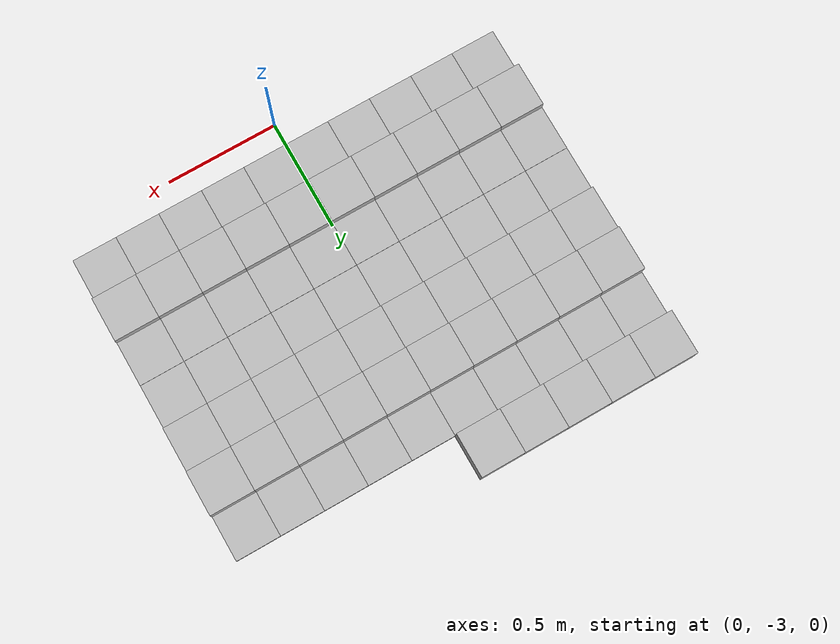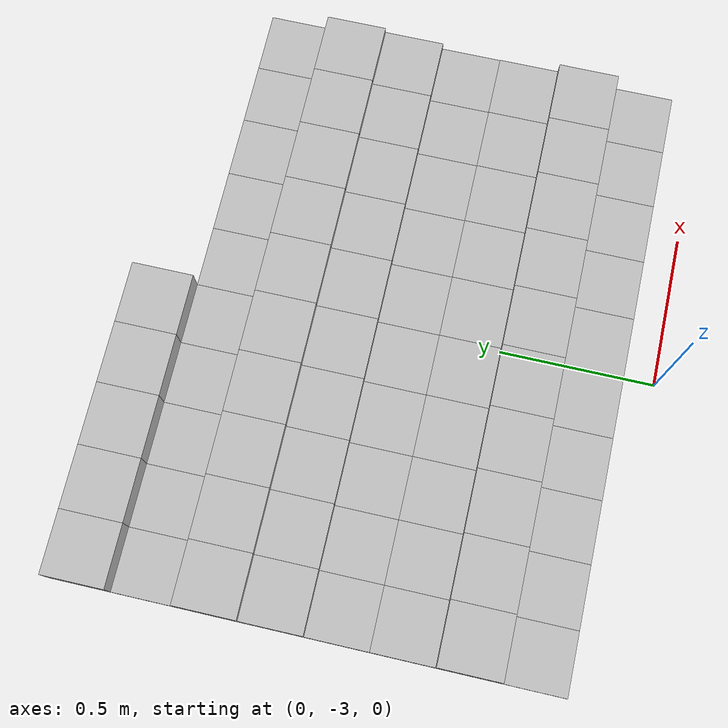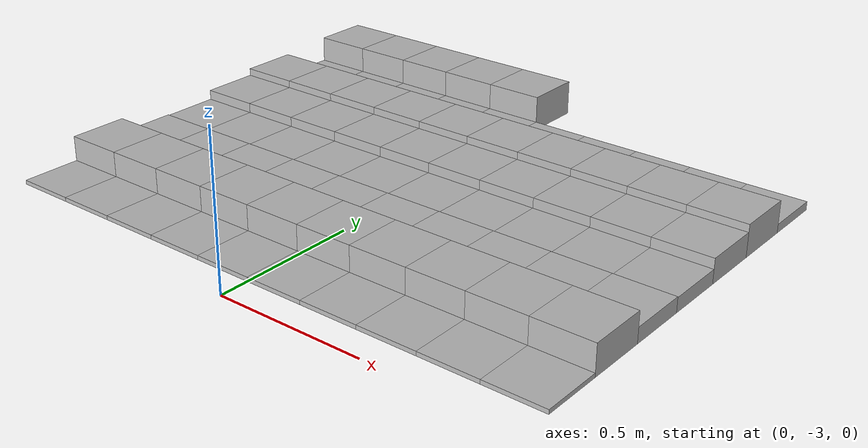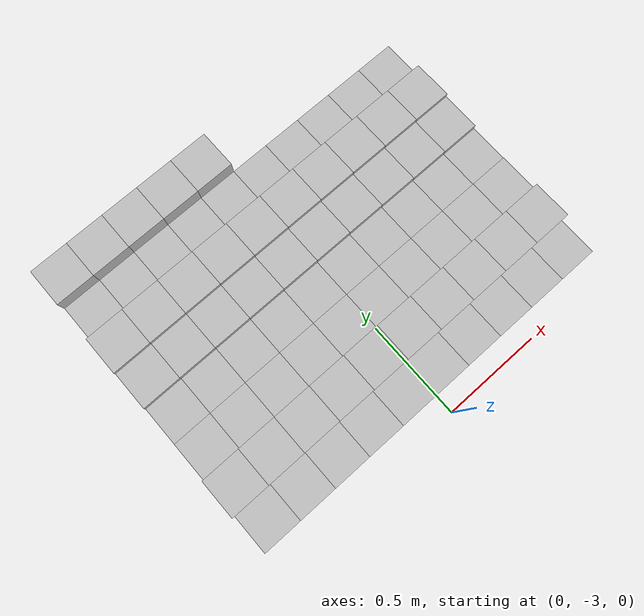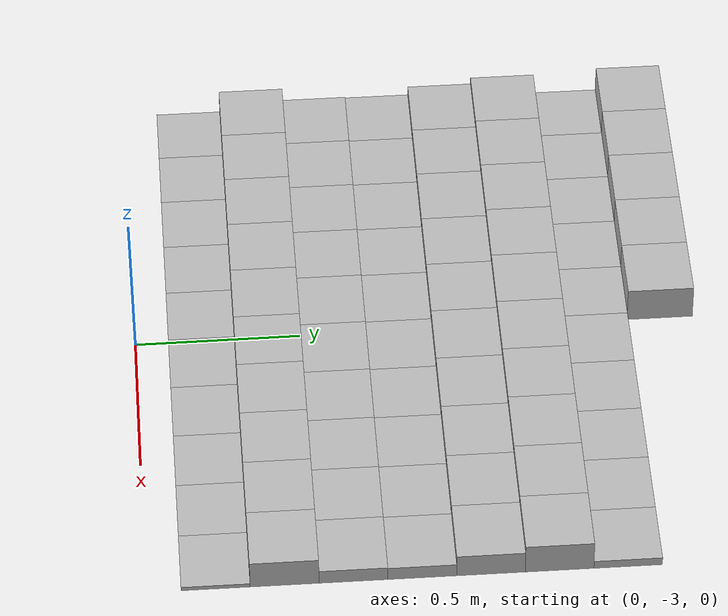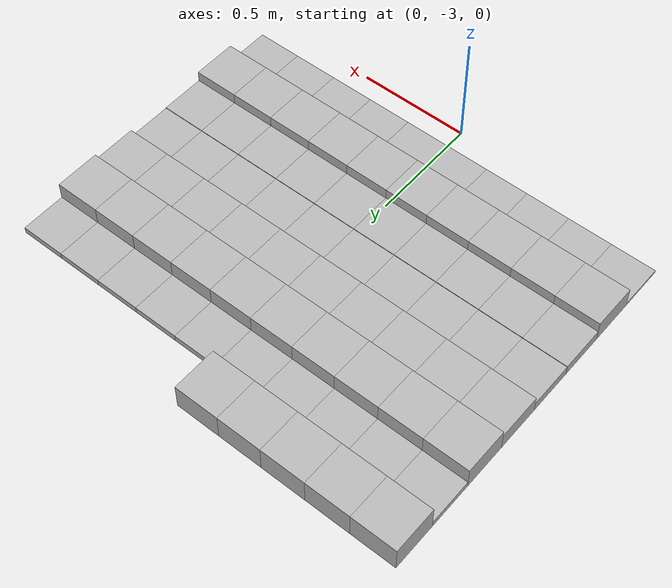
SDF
<sdf version="1.6">
 <model name="Terrain">
  <static>true</static>
  <link name="box_7_0">
   <pose>-0.9 -1.4 0.0604212234558 0 0 0</pose>
   <inertial>
    <mass>1.0</mass>
    <inertia><ixx>0.0</ixx><ixy>0.0</ixy><ixz>0.0</ixz><iyy>0.0</iyy><iyz>0.0</iyz><izz>0.0</izz></inertia>
   </inertial>
   <collision name="collision"><geometry><box><size>0.2 0.2 0.120842446912</size></box></geometry></collision>
   <visual name="visual"><geometry><box><size>0.2 0.2 0.120842446912</size></box></geometry></visual>
  </link>
  <link name="box_7_1">
   <pose>-0.7 -1.4 0.0604212234558 0 0 0</pose>
   <inertial>
    <mass>1.0</mass>
    <inertia><ixx>0.0</ixx><ixy>0.0</ixy><ixz>0.0</ixz><iyy>0.0</iyy><iyz>0.0</iyz><izz>0.0</izz></inertia>
   </inertial>
   <collision name="collision"><geometry><box><size>0.2 0.2 0.120842446912</size></box></geometry></collision>
   <visual name="visual"><geometry><box><size>0.2 0.2 0.120842446912</size></box></geometry></visual>
  </link>
  <link name="box_7_2">
   <pose>-0.5 -1.4 0.0604212234558 0 0 0</pose>
   <inertial>
    <mass>1.0</mass>
    <inertia><ixx>0.0</ixx><ixy>0.0</ixy><ixz>0.0</ixz><iyy>0.0</iyy><iyz>0.0</iyz><izz>0.0</izz></inertia>
   </inertial>
   <collision name="collision"><geometry><box><size>0.2 0.2 0.120842446912</size></box></geometry></collision>
   <visual name="visual"><geometry><box><size>0.2 0.2 0.120842446912</size></box></geometry></visual>
  </link>
  <link name="box_7_3">
   <pose>-0.3 -1.4 0.0604212234558 0 0 0</pose>
   <inertial>
    <mass>1.0</mass>
    <inertia><ixx>0.0</ixx><ixy>0.0</ixy><ixz>0.0</ixz><iyy>0.0</iyy><iyz>0.0</iyz><izz>0.0</izz></inertia>
   </inertial>
   <collision name="collision"><geometry><box><size>0.2 0.2 0.120842446912</size></box></geometry></collision>
   <visual name="visual"><geometry><box><size>0.2 0.2 0.120842446912</size></box></geometry></visual>
  </link>
  <link name="box_7_4">
   <pose>-0.1 -1.4 0.0604212234558 0 0 0</pose>
   <inertial>
    <mass>1.0</mass>
    <inertia><ixx>0.0</ixx><ixy>0.0</ixy><ixz>0.0</ixz><iyy>0.0</iyy><iyz>0.0</iyz><izz>0.0</izz></inertia>
   </inertial>
   <collision name="collision"><geometry><box><size>0.2 0.2 0.120842446912</size></box></geometry></collision>
   <visual name="visual"><geometry><box><size>0.2 0.2 0.120842446912</size></box></geometry></visual>
  </link>
  <link name="box_8_0">
   <pose>-0.9 -1.6 0.0146409914334 0 0 0</pose>
   <inertial>
    <mass>1.0</mass>
    <inertia><ixx>0.0</ixx><ixy>0.0</ixy><ixz>0.0</ixz><iyy>0.0</iyy><iyz>0.0</iyz><izz>0.0</izz></inertia>
   </inertial>
   <collision name="collision"><geometry><box><size>0.2 0.2 0.0292819828669</size></box></geometry></collision>
   <visual name="visual"><geometry><box><size>0.2 0.2 0.0292819828669</size></box></geometry></visual>
  </link>
  <link name="box_8_1">
   <pose>-0.7 -1.6 0.0146409914334 0 0 0</pose>
   <inertial>
    <mass>1.0</mass>
    <inertia><ixx>0.0</ixx><ixy>0.0</ixy><ixz>0.0</ixz><iyy>0.0</iyy><iyz>0.0</iyz><izz>0.0</izz></inertia>
   </inertial>
   <collision name="collision"><geometry><box><size>0.2 0.2 0.0292819828669</size></box></geometry></collision>
   <visual name="visual"><geometry><box><size>0.2 0.2 0.0292819828669</size></box></geometry></visual>
  </link>
  <link name="box_8_2">
   <pose>-0.5 -1.6 0.0146409914334 0 0 0</pose>
   <inertial>
    <mass>1.0</mass>
    <inertia><ixx>0.0</ixx><ixy>0.0</ixy><ixz>0.0</ixz><iyy>0.0</iyy><iyz>0.0</iyz><izz>0.0</izz></inertia>
   </inertial>
   <collision name="collision"><geometry><box><size>0.2 0.2 0.0292819828669</size></box></geometry></collision>
   <visual name="visual"><geometry><box><size>0.2 0.2 0.0292819828669</size></box></geometry></visual>
  </link>
  <link name="box_8_3">
   <pose>-0.3 -1.6 0.0146409914334 0 0 0</pose>
   <inertial>
    <mass>1.0</mass>
    <inertia><ixx>0.0</ixx><ixy>0.0</ixy><ixz>0.0</ixz><iyy>0.0</iyy><iyz>0.0</iyz><izz>0.0</izz></inertia>
   </inertial>
   <collision name="collision"><geometry><box><size>0.2 0.2 0.0292819828669</size></box></geometry></collision>
   <visual name="visual"><geometry><box><size>0.2 0.2 0.0292819828669</size></box></geometry></visual>
  </link>
  <link name="box_8_4">
   <pose>-0.1 -1.6 0.0146409914334 0 0 0</pose>
   <inertial>
    <mass>1.0</mass>
    <inertia><ixx>0.0</ixx><ixy>0.0</ixy><ixz>0.0</ixz><iyy>0.0</iyy><iyz>0.0</iyz><izz>0.0</izz></inertia>
   </inertial>
   <collision name="collision"><geometry><box><size>0.2 0.2 0.0292819828669</size></box></geometry></collision>
   <visual name="visual"><geometry><box><size>0.2 0.2 0.0292819828669</size></box></geometry></visual>
  </link>
  <link name="box_8_5">
   <pose>0.1 -1.6 0.0146409914334 0 0 0</pose>
   <inertial>
    <mass>1.0</mass>
    <inertia><ixx>0.0</ixx><ixy>0.0</ixy><ixz>0.0</ixz><iyy>0.0</iyy><iyz>0.0</iyz><izz>0.0</izz></inertia>
   </inertial>
   <collision name="collision"><geometry><box><size>0.2 0.2 0.0292819828669</size></box></geometry></collision>
   <visual name="visual"><geometry><box><size>0.2 0.2 0.0292819828669</size></box></geometry></visual>
  </link>
  <link name="box_8_6">
   <pose>0.3 -1.6 0.0146409914334 0 0 0</pose>
   <inertial>
    <mass>1.0</mass>
    <inertia><ixx>0.0</ixx><ixy>0.0</ixy><ixz>0.0</ixz><iyy>0.0</iyy><iyz>0.0</iyz><izz>0.0</izz></inertia>
   </inertial>
   <collision name="collision"><geometry><box><size>0.2 0.2 0.0292819828669</size></box></geometry></collision>
   <visual name="visual"><geometry><box><size>0.2 0.2 0.0292819828669</size></box></geometry></visual>
  </link>
  <link name="box_8_7">
   <pose>0.5 -1.6 0.0146409914334 0 0 0</pose>
   <inertial>
    <mass>1.0</mass>
    <inertia><ixx>0.0</ixx><ixy>0.0</ixy><ixz>0.0</ixz><iyy>0.0</iyy><iyz>0.0</iyz><izz>0.0</izz></inertia>
   </inertial>
   <collision name="collision"><geometry><box><size>0.2 0.2 0.0292819828669</size></box></geometry></collision>
   <visual name="visual"><geometry><box><size>0.2 0.2 0.0292819828669</size></box></geometry></visual>
  </link>
  <link name="box_8_8">
   <pose>0.7 -1.6 0.0146409914334 0 0 0</pose>
   <inertial>
    <mass>1.0</mass>
    <inertia><ixx>0.0</ixx><ixy>0.0</ixy><ixz>0.0</ixz><iyy>0.0</iyy><iyz>0.0</iyz><izz>0.0</izz></inertia>
   </inertial>
   <collision name="collision"><geometry><box><size>0.2 0.2 0.0292819828669</size></box></geometry></collision>
   <visual name="visual"><geometry><box><size>0.2 0.2 0.0292819828669</size></box></geometry></visual>
  </link>
  <link name="box_8_9">
   <pose>0.9 -1.6 0.0146409914334 0 0 0</pose>
   <inertial>
    <mass>1.0</mass>
    <inertia><ixx>0.0</ixx><ixy>0.0</ixy><ixz>0.0</ixz><iyy>0.0</iyy><iyz>0.0</iyz><izz>0.0</izz></inertia>
   </inertial>
   <collision name="collision"><geometry><box><size>0.2 0.2 0.0292819828669</size></box></geometry></collision>
   <visual name="visual"><geometry><box><size>0.2 0.2 0.0292819828669</size></box></geometry></visual>
  </link>
  <link name="box_9_0">
   <pose>-0.9 -1.8 0.0535586220968 0 0 0</pose>
   <inertial>
    <mass>1.0</mass>
    <inertia><ixx>0.0</ixx><ixy>0.0</ixy><ixz>0.0</ixz><iyy>0.0</iyy><iyz>0.0</iyz><izz>0.0</izz></inertia>
   </inertial>
   <collision name="collision"><geometry><box><size>0.2 0.2 0.107117244194</size></box></geometry></collision>
   <visual name="visual"><geometry><box><size>0.2 0.2 0.107117244194</size></box></geometry></visual>
  </link>
  <link name="box_9_1">
   <pose>-0.7 -1.8 0.0535586220968 0 0 0</pose>
   <inertial>
    <mass>1.0</mass>
    <inertia><ixx>0.0</ixx><ixy>0.0</ixy><ixz>0.0</ixz><iyy>0.0</iyy><iyz>0.0</iyz><izz>0.0</izz></inertia>
   </inertial>
   <collision name="collision"><geometry><box><size>0.2 0.2 0.107117244194</size></box></geometry></collision>
   <visual name="visual"><geometry><box><size>0.2 0.2 0.107117244194</size></box></geometry></visual>
  </link>
  <link name="box_9_2">
   <pose>-0.5 -1.8 0.0535586220968 0 0 0</pose>
   <inertial>
    <mass>1.0</mass>
    <inertia><ixx>0.0</ixx><ixy>0.0</ixy><ixz>0.0</ixz><iyy>0.0</iyy><iyz>0.0</iyz><izz>0.0</izz></inertia>
   </inertial>
   <collision name="collision"><geometry><box><size>0.2 0.2 0.107117244194</size></box></geometry></collision>
   <visual name="visual"><geometry><box><size>0.2 0.2 0.107117244194</size></box></geometry></visual>
  </link>
  <link name="box_9_3">
   <pose>-0.3 -1.8 0.0535586220968 0 0 0</pose>
   <inertial>
    <mass>1.0</mass>
    <inertia><ixx>0.0</ixx><ixy>0.0</ixy><ixz>0.0</ixz><iyy>0.0</iyy><iyz>0.0</iyz><izz>0.0</izz></inertia>
   </inertial>
   <collision name="collision"><geometry><box><size>0.2 0.2 0.107117244194</size></box></geometry></collision>
   <visual name="visual"><geometry><box><size>0.2 0.2 0.107117244194</size></box></geometry></visual>
  </link>
  <link name="box_9_4">
   <pose>-0.1 -1.8 0.0535586220968 0 0 0</pose>
   <inertial>
    <mass>1.0</mass>
    <inertia><ixx>0.0</ixx><ixy>0.0</ixy><ixz>0.0</ixz><iyy>0.0</iyy><iyz>0.0</iyz><izz>0.0</izz></inertia>
   </inertial>
   <collision name="collision"><geometry><box><size>0.2 0.2 0.107117244194</size></box></geometry></collision>
   <visual name="visual"><geometry><box><size>0.2 0.2 0.107117244194</size></box></geometry></visual>
  </link>
  <link name="box_9_5">
   <pose>0.1 -1.8 0.0535586220968 0 0 0</pose>
   <inertial>
    <mass>1.0</mass>
    <inertia><ixx>0.0</ixx><ixy>0.0</ixy><ixz>0.0</ixz><iyy>0.0</iyy><iyz>0.0</iyz><izz>0.0</izz></inertia>
   </inertial>
   <collision name="collision"><geometry><box><size>0.2 0.2 0.107117244194</size></box></geometry></collision>
   <visual name="visual"><geometry><box><size>0.2 0.2 0.107117244194</size></box></geometry></visual>
  </link>
  <link name="box_9_6">
   <pose>0.3 -1.8 0.0535586220968 0 0 0</pose>
   <inertial>
    <mass>1.0</mass>
    <inertia><ixx>0.0</ixx><ixy>0.0</ixy><ixz>0.0</ixz><iyy>0.0</iyy><iyz>0.0</iyz><izz>0.0</izz></inertia>
   </inertial>
   <collision name="collision"><geometry><box><size>0.2 0.2 0.107117244194</size></box></geometry></collision>
   <visual name="visual"><geometry><box><size>0.2 0.2 0.107117244194</size></box></geometry></visual>
  </link>
  <link name="box_9_7">
   <pose>0.5 -1.8 0.0535586220968 0 0 0</pose>
   <inertial>
    <mass>1.0</mass>
    <inertia><ixx>0.0</ixx><ixy>0.0</ixy><ixz>0.0</ixz><iyy>0.0</iyy><iyz>0.0</iyz><izz>0.0</izz></inertia>
   </inertial>
   <collision name="collision"><geometry><box><size>0.2 0.2 0.107117244194</size></box></geometry></collision>
   <visual name="visual"><geometry><box><size>0.2 0.2 0.107117244194</size></box></geometry></visual>
  </link>
  <link name="box_9_8">
   <pose>0.7 -1.8 0.0535586220968 0 0 0</pose>
   <inertial>
    <mass>1.0</mass>
    <inertia><ixx>0.0</ixx><ixy>0.0</ixy><ixz>0.0</ixz><iyy>0.0</iyy><iyz>0.0</iyz><izz>0.0</izz></inertia>
   </inertial>
   <collision name="collision"><geometry><box><size>0.2 0.2 0.107117244194</size></box></geometry></collision>
   <visual name="visual"><geometry><box><size>0.2 0.2 0.107117244194</size></box></geometry></visual>
  </link>
  <link name="box_9_9">
   <pose>0.9 -1.8 0.0535586220968 0 0 0</pose>
   <inertial>
    <mass>1.0</mass>
    <inertia><ixx>0.0</ixx><ixy>0.0</ixy><ixz>0.0</ixz><iyy>0.0</iyy><iyz>0.0</iyz><izz>0.0</izz></inertia>
   </inertial>
   <collision name="collision"><geometry><box><size>0.2 0.2 0.107117244194</size></box></geometry></collision>
   <visual name="visual"><geometry><box><size>0.2 0.2 0.107117244194</size></box></geometry></visual>
  </link>
  <link name="box_10_0">
   <pose>-0.9 -2.0 0.0407985439873 0 0 0</pose>
   <inertial>
    <mass>1.0</mass>
    <inertia><ixx>0.0</ixx><ixy>0.0</ixy><ixz>0.0</ixz><iyy>0.0</iyy><iyz>0.0</iyz><izz>0.0</izz></inertia>
   </inertial>
   <collision name="collision"><geometry><box><size>0.2 0.2 0.0815970879745</size></box></geometry></collision>
   <visual name="visual"><geometry><box><size>0.2 0.2 0.0815970879745</size></box></geometry></visual>
  </link>
  <link name="box_10_1">
   <pose>-0.7 -2.0 0.0407985439873 0 0 0</pose>
   <inertial>
    <mass>1.0</mass>
    <inertia><ixx>0.0</ixx><ixy>0.0</ixy><ixz>0.0</ixz><iyy>0.0</iyy><iyz>0.0</iyz><izz>0.0</izz></inertia>
   </inertial>
   <collision name="collision"><geometry><box><size>0.2 0.2 0.0815970879745</size></box></geometry></collision>
   <visual name="visual"><geometry><box><size>0.2 0.2 0.0815970879745</size></box></geometry></visual>
  </link>
  <link name="box_10_2">
   <pose>-0.5 -2.0 0.0407985439873 0 0 0</pose>
   <inertial>
    <mass>1.0</mass>
    <inertia><ixx>0.0</ixx><ixy>0.0</ixy><ixz>0.0</ixz><iyy>0.0</iyy><iyz>0.0</iyz><izz>0.0</izz></inertia>
   </inertial>
   <collision name="collision"><geometry><box><size>0.2 0.2 0.0815970879745</size></box></geometry></collision>
   <visual name="visual"><geometry><box><size>0.2 0.2 0.0815970879745</size></box></geometry></visual>
  </link>
  <link name="box_10_3">
   <pose>-0.3 -2.0 0.0407985439873 0 0 0</pose>
   <inertial>
    <mass>1.0</mass>
    <inertia><ixx>0.0</ixx><ixy>0.0</ixy><ixz>0.0</ixz><iyy>0.0</iyy><iyz>0.0</iyz><izz>0.0</izz></inertia>
   </inertial>
   <collision name="collision"><geometry><box><size>0.2 0.2 0.0815970879745</size></box></geometry></collision>
   <visual name="visual"><geometry><box><size>0.2 0.2 0.0815970879745</size></box></geometry></visual>
  </link>
  <link name="box_10_4">
   <pose>-0.1 -2.0 0.0407985439873 0 0 0</pose>
   <inertial>
    <mass>1.0</mass>
    <inertia><ixx>0.0</ixx><ixy>0.0</ixy><ixz>0.0</ixz><iyy>0.0</iyy><iyz>0.0</iyz><izz>0.0</izz></inertia>
   </inertial>
   <collision name="collision"><geometry><box><size>0.2 0.2 0.0815970879745</size></box></geometry></collision>
   <visual name="visual"><geometry><box><size>0.2 0.2 0.0815970879745</size></box></geometry></visual>
  </link>
  <link name="box_10_5">
   <pose>0.1 -2.0 0.0407985439873 0 0 0</pose>
   <inertial>
    <mass>1.0</mass>
    <inertia><ixx>0.0</ixx><ixy>0.0</ixy><ixz>0.0</ixz><iyy>0.0</iyy><iyz>0.0</iyz><izz>0.0</izz></inertia>
   </inertial>
   <collision name="collision"><geometry><box><size>0.2 0.2 0.0815970879745</size></box></geometry></collision>
   <visual name="visual"><geometry><box><size>0.2 0.2 0.0815970879745</size></box></geometry></visual>
  </link>
  <link name="box_10_6">
   <pose>0.3 -2.0 0.0407985439873 0 0 0</pose>
   <inertial>
    <mass>1.0</mass>
    <inertia><ixx>0.0</ixx><ixy>0.0</ixy><ixz>0.0</ixz><iyy>0.0</iyy><iyz>0.0</iyz><izz>0.0</izz></inertia>
   </inertial>
   <collision name="collision"><geometry><box><size>0.2 0.2 0.0815970879745</size></box></geometry></collision>
   <visual name="visual"><geometry><box><size>0.2 0.2 0.0815970879745</size></box></geometry></visual>
  </link>
  <link name="box_10_7">
   <pose>0.5 -2.0 0.0407985439873 0 0 0</pose>
   <inertial>
    <mass>1.0</mass>
    <inertia><ixx>0.0</ixx><ixy>0.0</ixy><ixz>0.0</ixz><iyy>0.0</iyy><iyz>0.0</iyz><izz>0.0</izz></inertia>
   </inertial>
   <collision name="collision"><geometry><box><size>0.2 0.2 0.0815970879745</size></box></geometry></collision>
   <visual name="visual"><geometry><box><size>0.2 0.2 0.0815970879745</size></box></geometry></visual>
  </link>
  <link name="box_10_8">
   <pose>0.7 -2.0 0.0407985439873 0 0 0</pose>
   <inertial>
    <mass>1.0</mass>
    <inertia><ixx>0.0</ixx><ixy>0.0</ixy><ixz>0.0</ixz><iyy>0.0</iyy><iyz>0.0</iyz><izz>0.0</izz></inertia>
   </inertial>
   <collision name="collision"><geometry><box><size>0.2 0.2 0.0815970879745</size></box></geometry></collision>
   <visual name="visual"><geometry><box><size>0.2 0.2 0.0815970879745</size></box></geometry></visual>
  </link>
  <link name="box_10_9">
   <pose>0.9 -2.0 0.0407985439873 0 0 0</pose>
   <inertial>
    <mass>1.0</mass>
    <inertia><ixx>0.0</ixx><ixy>0.0</ixy><ixz>0.0</ixz><iyy>0.0</iyy><iyz>0.0</iyz><izz>0.0</izz></inertia>
   </inertial>
   <collision name="collision"><geometry><box><size>0.2 0.2 0.0815970879745</size></box></geometry></collision>
   <visual name="visual"><geometry><box><size>0.2 0.2 0.0815970879745</size></box></geometry></visual>
  </link>
  <link name="box_11_0">
   <pose>-0.9 -2.2 0.0237884900567 0 0 0</pose>
   <inertial>
    <mass>1.0</mass>
    <inertia><ixx>0.0</ixx><ixy>0.0</ixy><ixz>0.0</ixz><iyy>0.0</iyy><iyz>0.0</iyz><izz>0.0</izz></inertia>
   </inertial>
   <collision name="collision"><geometry><box><size>0.2 0.2 0.0475769801135</size></box></geometry></collision>
   <visual name="visual"><geometry><box><size>0.2 0.2 0.0475769801135</size></box></geometry></visual>
  </link>
  <link name="box_11_1">
   <pose>-0.7 -2.2 0.0237884900567 0 0 0</pose>
   <inertial>
    <mass>1.0</mass>
    <inertia><ixx>0.0</ixx><ixy>0.0</ixy><ixz>0.0</ixz><iyy>0.0</iyy><iyz>0.0</iyz><izz>0.0</izz></inertia>
   </inertial>
   <collision name="collision"><geometry><box><size>0.2 0.2 0.0475769801135</size></box></geometry></collision>
   <visual name="visual"><geometry><box><size>0.2 0.2 0.0475769801135</size></box></geometry></visual>
  </link>
  <link name="box_11_2">
   <pose>-0.5 -2.2 0.0237884900567 0 0 0</pose>
   <inertial>
    <mass>1.0</mass>
    <inertia><ixx>0.0</ixx><ixy>0.0</ixy><ixz>0.0</ixz><iyy>0.0</iyy><iyz>0.0</iyz><izz>0.0</izz></inertia>
   </inertial>
   <collision name="collision"><geometry><box><size>0.2 0.2 0.0475769801135</size></box></geometry></collision>
   <visual name="visual"><geometry><box><size>0.2 0.2 0.0475769801135</size></box></geometry></visual>
  </link>
  <link name="box_11_3">
   <pose>-0.3 -2.2 0.0237884900567 0 0 0</pose>
   <inertial>
    <mass>1.0</mass>
    <inertia><ixx>0.0</ixx><ixy>0.0</ixy><ixz>0.0</ixz><iyy>0.0</iyy><iyz>0.0</iyz><izz>0.0</izz></inertia>
   </inertial>
   <collision name="collision"><geometry><box><size>0.2 0.2 0.0475769801135</size></box></geometry></collision>
   <visual name="visual"><geometry><box><size>0.2 0.2 0.0475769801135</size></box></geometry></visual>
  </link>
  <link name="box_11_4">
   <pose>-0.1 -2.2 0.0237884900567 0 0 0</pose>
   <inertial>
    <mass>1.0</mass>
    <inertia><ixx>0.0</ixx><ixy>0.0</ixy><ixz>0.0</ixz><iyy>0.0</iyy><iyz>0.0</iyz><izz>0.0</izz></inertia>
   </inertial>
   <collision name="collision"><geometry><box><size>0.2 0.2 0.0475769801135</size></box></geometry></collision>
   <visual name="visual"><geometry><box><size>0.2 0.2 0.0475769801135</size></box></geometry></visual>
  </link>
  <link name="box_11_5">
   <pose>0.1 -2.2 0.0237884900567 0 0 0</pose>
   <inertial>
    <mass>1.0</mass>
    <inertia><ixx>0.0</ixx><ixy>0.0</ixy><ixz>0.0</ixz><iyy>0.0</iyy><iyz>0.0</iyz><izz>0.0</izz></inertia>
   </inertial>
   <collision name="collision"><geometry><box><size>0.2 0.2 0.0475769801135</size></box></geometry></collision>
   <visual name="visual"><geometry><box><size>0.2 0.2 0.0475769801135</size></box></geometry></visual>
  </link>
  <link name="box_11_6">
   <pose>0.3 -2.2 0.0237884900567 0 0 0</pose>
   <inertial>
    <mass>1.0</mass>
    <inertia><ixx>0.0</ixx><ixy>0.0</ixy><ixz>0.0</ixz><iyy>0.0</iyy><iyz>0.0</iyz><izz>0.0</izz></inertia>
   </inertial>
   <collision name="collision"><geometry><box><size>0.2 0.2 0.0475769801135</size></box></geometry></collision>
   <visual name="visual"><geometry><box><size>0.2 0.2 0.0475769801135</size></box></geometry></visual>
  </link>
  <link name="box_11_7">
   <pose>0.5 -2.2 0.0237884900567 0 0 0</pose>
   <inertial>
    <mass>1.0</mass>
    <inertia><ixx>0.0</ixx><ixy>0.0</ixy><ixz>0.0</ixz><iyy>0.0</iyy><iyz>0.0</iyz><izz>0.0</izz></inertia>
   </inertial>
   <collision name="collision"><geometry><box><size>0.2 0.2 0.0475769801135</size></box></geometry></collision>
   <visual name="visual"><geometry><box><size>0.2 0.2 0.0475769801135</size></box></geometry></visual>
  </link>
  <link name="box_11_8">
   <pose>0.7 -2.2 0.0237884900567 0 0 0</pose>
   <inertial>
    <mass>1.0</mass>
    <inertia><ixx>0.0</ixx><ixy>0.0</ixy><ixz>0.0</ixz><iyy>0.0</iyy><iyz>0.0</iyz><izz>0.0</izz></inertia>
   </inertial>
   <collision name="collision"><geometry><box><size>0.2 0.2 0.0475769801135</size></box></geometry></collision>
   <visual name="visual"><geometry><box><size>0.2 0.2 0.0475769801135</size></box></geometry></visual>
  </link>
  <link name="box_11_9">
   <pose>0.9 -2.2 0.0237884900567 0 0 0</pose>
   <inertial>
    <mass>1.0</mass>
    <inertia><ixx>0.0</ixx><ixy>0.0</ixy><ixz>0.0</ixz><iyy>0.0</iyy><iyz>0.0</iyz><izz>0.0</izz></inertia>
   </inertial>
   <collision name="collision"><geometry><box><size>0.2 0.2 0.0475769801135</size></box></geometry></collision>
   <visual name="visual"><geometry><box><size>0.2 0.2 0.0475769801135</size></box></geometry></visual>
  </link>
  <link name="box_12_0">
   <pose>-0.9 -2.4 0.0251509138571 0 0 0</pose>
   <inertial>
    <mass>1.0</mass>
    <inertia><ixx>0.0</ixx><ixy>0.0</ixy><ixz>0.0</ixz><iyy>0.0</iyy><iyz>0.0</iyz><izz>0.0</izz></inertia>
   </inertial>
   <collision name="collision"><geometry><box><size>0.2 0.2 0.0503018277142</size></box></geometry></collision>
   <visual name="visual"><geometry><box><size>0.2 0.2 0.0503018277142</size></box></geometry></visual>
  </link>
  <link name="box_12_1">
   <pose>-0.7 -2.4 0.0251509138571 0 0 0</pose>
   <inertial>
    <mass>1.0</mass>
    <inertia><ixx>0.0</ixx><ixy>0.0</ixy><ixz>0.0</ixz><iyy>0.0</iyy><iyz>0.0</iyz><izz>0.0</izz></inertia>
   </inertial>
   <collision name="collision"><geometry><box><size>0.2 0.2 0.0503018277142</size></box></geometry></collision>
   <visual name="visual"><geometry><box><size>0.2 0.2 0.0503018277142</size></box></geometry></visual>
  </link>
  <link name="box_12_2">
   <pose>-0.5 -2.4 0.0251509138571 0 0 0</pose>
   <inertial>
    <mass>1.0</mass>
    <inertia><ixx>0.0</ixx><ixy>0.0</ixy><ixz>0.0</ixz><iyy>0.0</iyy><iyz>0.0</iyz><izz>0.0</izz></inertia>
   </inertial>
   <collision name="collision"><geometry><box><size>0.2 0.2 0.0503018277142</size></box></geometry></collision>
   <visual name="visual"><geometry><box><size>0.2 0.2 0.0503018277142</size></box></geometry></visual>
  </link>
  <link name="box_12_3">
   <pose>-0.3 -2.4 0.0251509138571 0 0 0</pose>
   <inertial>
    <mass>1.0</mass>
    <inertia><ixx>0.0</ixx><ixy>0.0</ixy><ixz>0.0</ixz><iyy>0.0</iyy><iyz>0.0</iyz><izz>0.0</izz></inertia>
   </inertial>
   <collision name="collision"><geometry><box><size>0.2 0.2 0.0503018277142</size></box></geometry></collision>
   <visual name="visual"><geometry><box><size>0.2 0.2 0.0503018277142</size></box></geometry></visual>
  </link>
  <link name="box_12_4">
   <pose>-0.1 -2.4 0.0251509138571 0 0 0</pose>
   <inertial>
    <mass>1.0</mass>
    <inertia><ixx>0.0</ixx><ixy>0.0</ixy><ixz>0.0</ixz><iyy>0.0</iyy><iyz>0.0</iyz><izz>0.0</izz></inertia>
   </inertial>
   <collision name="collision"><geometry><box><size>0.2 0.2 0.0503018277142</size></box></geometry></collision>
   <visual name="visual"><geometry><box><size>0.2 0.2 0.0503018277142</size></box></geometry></visual>
  </link>
  <link name="box_12_5">
   <pose>0.1 -2.4 0.0251509138571 0 0 0</pose>
   <inertial>
    <mass>1.0</mass>
    <inertia><ixx>0.0</ixx><ixy>0.0</ixy><ixz>0.0</ixz><iyy>0.0</iyy><iyz>0.0</iyz><izz>0.0</izz></inertia>
   </inertial>
   <collision name="collision"><geometry><box><size>0.2 0.2 0.0503018277142</size></box></geometry></collision>
   <visual name="visual"><geometry><box><size>0.2 0.2 0.0503018277142</size></box></geometry></visual>
  </link>
  <link name="box_12_6">
   <pose>0.3 -2.4 0.0251509138571 0 0 0</pose>
   <inertial>
    <mass>1.0</mass>
    <inertia><ixx>0.0</ixx><ixy>0.0</ixy><ixz>0.0</ixz><iyy>0.0</iyy><iyz>0.0</iyz><izz>0.0</izz></inertia>
   </inertial>
   <collision name="collision"><geometry><box><size>0.2 0.2 0.0503018277142</size></box></geometry></collision>
   <visual name="visual"><geometry><box><size>0.2 0.2 0.0503018277142</size></box></geometry></visual>
  </link>
  <link name="box_12_7">
   <pose>0.5 -2.4 0.0251509138571 0 0 0</pose>
   <inertial>
    <mass>1.0</mass>
    <inertia><ixx>0.0</ixx><ixy>0.0</ixy><ixz>0.0</ixz><iyy>0.0</iyy><iyz>0.0</iyz><izz>0.0</izz></inertia>
   </inertial>
   <collision name="collision"><geometry><box><size>0.2 0.2 0.0503018277142</size></box></geometry></collision>
   <visual name="visual"><geometry><box><size>0.2 0.2 0.0503018277142</size></box></geometry></visual>
  </link>
  <link name="box_12_8">
   <pose>0.7 -2.4 0.0251509138571 0 0 0</pose>
   <inertial>
    <mass>1.0</mass>
    <inertia><ixx>0.0</ixx><ixy>0.0</ixy><ixz>0.0</ixz><iyy>0.0</iyy><iyz>0.0</iyz><izz>0.0</izz></inertia>
   </inertial>
   <collision name="collision"><geometry><box><size>0.2 0.2 0.0503018277142</size></box></geometry></collision>
   <visual name="visual"><geometry><box><size>0.2 0.2 0.0503018277142</size></box></geometry></visual>
  </link>
  <link name="box_12_9">
   <pose>0.9 -2.4 0.0251509138571 0 0 0</pose>
   <inertial>
    <mass>1.0</mass>
    <inertia><ixx>0.0</ixx><ixy>0.0</ixy><ixz>0.0</ixz><iyy>0.0</iyy><iyz>0.0</iyz><izz>0.0</izz></inertia>
   </inertial>
   <collision name="collision"><geometry><box><size>0.2 0.2 0.0503018277142</size></box></geometry></collision>
   <visual name="visual"><geometry><box><size>0.2 0.2 0.0503018277142</size></box></geometry></visual>
  </link>
  <link name="box_13_0">
   <pose>-0.9 -2.6 0.0496011248854 0 0 0</pose>
   <inertial>
    <mass>1.0</mass>
    <inertia><ixx>0.0</ixx><ixy>0.0</ixy><ixz>0.0</ixz><iyy>0.0</iyy><iyz>0.0</iyz><izz>0.0</izz></inertia>
   </inertial>
   <collision name="collision"><geometry><box><size>0.2 0.2 0.0992022497707</size></box></geometry></collision>
   <visual name="visual"><geometry><box><size>0.2 0.2 0.0992022497707</size></box></geometry></visual>
  </link>
  <link name="box_13_1">
   <pose>-0.7 -2.6 0.0496011248854 0 0 0</pose>
   <inertial>
    <mass>1.0</mass>
    <inertia><ixx>0.0</ixx><ixy>0.0</ixy><ixz>0.0</ixz><iyy>0.0</iyy><iyz>0.0</iyz><izz>0.0</izz></inertia>
   </inertial>
   <collision name="collision"><geometry><box><size>0.2 0.2 0.0992022497707</size></box></geometry></collision>
   <visual name="visual"><geometry><box><size>0.2 0.2 0.0992022497707</size></box></geometry></visual>
  </link>
  <link name="box_13_2">
   <pose>-0.5 -2.6 0.0496011248854 0 0 0</pose>
   <inertial>
    <mass>1.0</mass>
    <inertia><ixx>0.0</ixx><ixy>0.0</ixy><ixz>0.0</ixz><iyy>0.0</iyy><iyz>0.0</iyz><izz>0.0</izz></inertia>
   </inertial>
   <collision name="collision"><geometry><box><size>0.2 0.2 0.0992022497707</size></box></geometry></collision>
   <visual name="visual"><geometry><box><size>0.2 0.2 0.0992022497707</size></box></geometry></visual>
  </link>
  <link name="box_13_3">
   <pose>-0.3 -2.6 0.0496011248854 0 0 0</pose>
   <inertial>
    <mass>1.0</mass>
    <inertia><ixx>0.0</ixx><ixy>0.0</ixy><ixz>0.0</ixz><iyy>0.0</iyy><iyz>0.0</iyz><izz>0.0</izz></inertia>
   </inertial>
   <collision name="collision"><geometry><box><size>0.2 0.2 0.0992022497707</size></box></geometry></collision>
   <visual name="visual"><geometry><box><size>0.2 0.2 0.0992022497707</size></box></geometry></visual>
  </link>
  <link name="box_13_4">
   <pose>-0.1 -2.6 0.0496011248854 0 0 0</pose>
   <inertial>
    <mass>1.0</mass>
    <inertia><ixx>0.0</ixx><ixy>0.0</ixy><ixz>0.0</ixz><iyy>0.0</iyy><iyz>0.0</iyz><izz>0.0</izz></inertia>
   </inertial>
   <collision name="collision"><geometry><box><size>0.2 0.2 0.0992022497707</size></box></geometry></collision>
   <visual name="visual"><geometry><box><size>0.2 0.2 0.0992022497707</size></box></geometry></visual>
  </link>
  <link name="box_13_5">
   <pose>0.1 -2.6 0.0496011248854 0 0 0</pose>
   <inertial>
    <mass>1.0</mass>
    <inertia><ixx>0.0</ixx><ixy>0.0</ixy><ixz>0.0</ixz><iyy>0.0</iyy><iyz>0.0</iyz><izz>0.0</izz></inertia>
   </inertial>
   <collision name="collision"><geometry><box><size>0.2 0.2 0.0992022497707</size></box></geometry></collision>
   <visual name="visual"><geometry><box><size>0.2 0.2 0.0992022497707</size></box></geometry></visual>
  </link>
  <link name="box_13_6">
   <pose>0.3 -2.6 0.0496011248854 0 0 0</pose>
   <inertial>
    <mass>1.0</mass>
    <inertia><ixx>0.0</ixx><ixy>0.0</ixy><ixz>0.0</ixz><iyy>0.0</iyy><iyz>0.0</iyz><izz>0.0</izz></inertia>
   </inertial>
   <collision name="collision"><geometry><box><size>0.2 0.2 0.0992022497707</size></box></geometry></collision>
   <visual name="visual"><geometry><box><size>0.2 0.2 0.0992022497707</size></box></geometry></visual>
  </link>
  <link name="box_13_7">
   <pose>0.5 -2.6 0.0496011248854 0 0 0</pose>
   <inertial>
    <mass>1.0</mass>
    <inertia><ixx>0.0</ixx><ixy>0.0</ixy><ixz>0.0</ixz><iyy>0.0</iyy><iyz>0.0</iyz><izz>0.0</izz></inertia>
   </inertial>
   <collision name="collision"><geometry><box><size>0.2 0.2 0.0992022497707</size></box></geometry></collision>
   <visual name="visual"><geometry><box><size>0.2 0.2 0.0992022497707</size></box></geometry></visual>
  </link>
  <link name="box_13_8">
   <pose>0.7 -2.6 0.0496011248854 0 0 0</pose>
   <inertial>
    <mass>1.0</mass>
    <inertia><ixx>0.0</ixx><ixy>0.0</ixy><ixz>0.0</ixz><iyy>0.0</iyy><iyz>0.0</iyz><izz>0.0</izz></inertia>
   </inertial>
   <collision name="collision"><geometry><box><size>0.2 0.2 0.0992022497707</size></box></geometry></collision>
   <visual name="visual"><geometry><box><size>0.2 0.2 0.0992022497707</size></box></geometry></visual>
  </link>
  <link name="box_13_9">
   <pose>0.9 -2.6 0.0496011248854 0 0 0</pose>
   <inertial>
    <mass>1.0</mass>
    <inertia><ixx>0.0</ixx><ixy>0.0</ixy><ixz>0.0</ixz><iyy>0.0</iyy><iyz>0.0</iyz><izz>0.0</izz></inertia>
   </inertial>
   <collision name="collision"><geometry><box><size>0.2 0.2 0.0992022497707</size></box></geometry></collision>
   <visual name="visual"><geometry><box><size>0.2 0.2 0.0992022497707</size></box></geometry></visual>
  </link>
  <link name="box_14_0">
   <pose>-0.9 -2.8 0.00686470632631 0 0 0</pose>
   <inertial>
    <mass>1.0</mass>
    <inertia><ixx>0.0</ixx><ixy>0.0</ixy><ixz>0.0</ixz><iyy>0.0</iyy><iyz>0.0</iyz><izz>0.0</izz></inertia>
   </inertial>
   <collision name="collision"><geometry><box><size>0.2 0.2 0.0137294126526</size></box></geometry></collision>
   <visual name="visual"><geometry><box><size>0.2 0.2 0.0137294126526</size></box></geometry></visual>
  </link>
  <link name="box_14_1">
   <pose>-0.7 -2.8 0.00686470632631 0 0 0</pose>
   <inertial>
    <mass>1.0</mass>
    <inertia><ixx>0.0</ixx><ixy>0.0</ixy><ixz>0.0</ixz><iyy>0.0</iyy><iyz>0.0</iyz><izz>0.0</izz></inertia>
   </inertial>
   <collision name="collision"><geometry><box><size>0.2 0.2 0.0137294126526</size></box></geometry></collision>
   <visual name="visual"><geometry><box><size>0.2 0.2 0.0137294126526</size></box></geometry></visual>
  </link>
  <link name="box_14_2">
   <pose>-0.5 -2.8 0.00686470632631 0 0 0</pose>
   <inertial>
    <mass>1.0</mass>
    <inertia><ixx>0.0</ixx><ixy>0.0</ixy><ixz>0.0</ixz><iyy>0.0</iyy><iyz>0.0</iyz><izz>0.0</izz></inertia>
   </inertial>
   <collision name="collision"><geometry><box><size>0.2 0.2 0.0137294126526</size></box></geometry></collision>
   <visual name="visual"><geometry><box><size>0.2 0.2 0.0137294126526</size></box></geometry></visual>
  </link>
  <link name="box_14_3">
   <pose>-0.3 -2.8 0.00686470632631 0 0 0</pose>
   <inertial>
    <mass>1.0</mass>
    <inertia><ixx>0.0</ixx><ixy>0.0</ixy><ixz>0.0</ixz><iyy>0.0</iyy><iyz>0.0</iyz><izz>0.0</izz></inertia>
   </inertial>
   <collision name="collision"><geometry><box><size>0.2 0.2 0.0137294126526</size></box></geometry></collision>
   <visual name="visual"><geometry><box><size>0.2 0.2 0.0137294126526</size></box></geometry></visual>
  </link>
  <link name="box_14_4">
   <pose>-0.1 -2.8 0.00686470632631 0 0 0</pose>
   <inertial>
    <mass>1.0</mass>
    <inertia><ixx>0.0</ixx><ixy>0.0</ixy><ixz>0.0</ixz><iyy>0.0</iyy><iyz>0.0</iyz><izz>0.0</izz></inertia>
   </inertial>
   <collision name="collision"><geometry><box><size>0.2 0.2 0.0137294126526</size></box></geometry></collision>
   <visual name="visual"><geometry><box><size>0.2 0.2 0.0137294126526</size></box></geometry></visual>
  </link>
  <link name="box_14_5">
   <pose>0.1 -2.8 0.00686470632631 0 0 0</pose>
   <inertial>
    <mass>1.0</mass>
    <inertia><ixx>0.0</ixx><ixy>0.0</ixy><ixz>0.0</ixz><iyy>0.0</iyy><iyz>0.0</iyz><izz>0.0</izz></inertia>
   </inertial>
   <collision name="collision"><geometry><box><size>0.2 0.2 0.0137294126526</size></box></geometry></collision>
   <visual name="visual"><geometry><box><size>0.2 0.2 0.0137294126526</size></box></geometry></visual>
  </link>
  <link name="box_14_6">
   <pose>0.3 -2.8 0.00686470632631 0 0 0</pose>
   <inertial>
    <mass>1.0</mass>
    <inertia><ixx>0.0</ixx><ixy>0.0</ixy><ixz>0.0</ixz><iyy>0.0</iyy><iyz>0.0</iyz><izz>0.0</izz></inertia>
   </inertial>
   <collision name="collision"><geometry><box><size>0.2 0.2 0.0137294126526</size></box></geometry></collision>
   <visual name="visual"><geometry><box><size>0.2 0.2 0.0137294126526</size></box></geometry></visual>
  </link>
  <link name="box_14_7">
   <pose>0.5 -2.8 0.00686470632631 0 0 0</pose>
   <inertial>
    <mass>1.0</mass>
    <inertia><ixx>0.0</ixx><ixy>0.0</ixy><ixz>0.0</ixz><iyy>0.0</iyy><iyz>0.0</iyz><izz>0.0</izz></inertia>
   </inertial>
   <collision name="collision"><geometry><box><size>0.2 0.2 0.0137294126526</size></box></geometry></collision>
   <visual name="visual"><geometry><box><size>0.2 0.2 0.0137294126526</size></box></geometry></visual>
  </link>
  <link name="box_14_8">
   <pose>0.7 -2.8 0.00686470632631 0 0 0</pose>
   <inertial>
    <mass>1.0</mass>
    <inertia><ixx>0.0</ixx><ixy>0.0</ixy><ixz>0.0</ixz><iyy>0.0</iyy><iyz>0.0</iyz><izz>0.0</izz></inertia>
   </inertial>
   <collision name="collision"><geometry><box><size>0.2 0.2 0.0137294126526</size></box></geometry></collision>
   <visual name="visual"><geometry><box><size>0.2 0.2 0.0137294126526</size></box></geometry></visual>
  </link>
  <link name="box_14_9">
   <pose>0.9 -2.8 0.00686470632631 0 0 0</pose>
   <inertial>
    <mass>1.0</mass>
    <inertia><ixx>0.0</ixx><ixy>0.0</ixy><ixz>0.0</ixz><iyy>0.0</iyy><iyz>0.0</iyz><izz>0.0</izz></inertia>
   </inertial>
   <collision name="collision"><geometry><box><size>0.2 0.2 0.0137294126526</size></box></geometry></collision>
   <visual name="visual"><geometry><box><size>0.2 0.2 0.0137294126526</size></box></geometry></visual>
  </link>
 </model>
</sdf>
